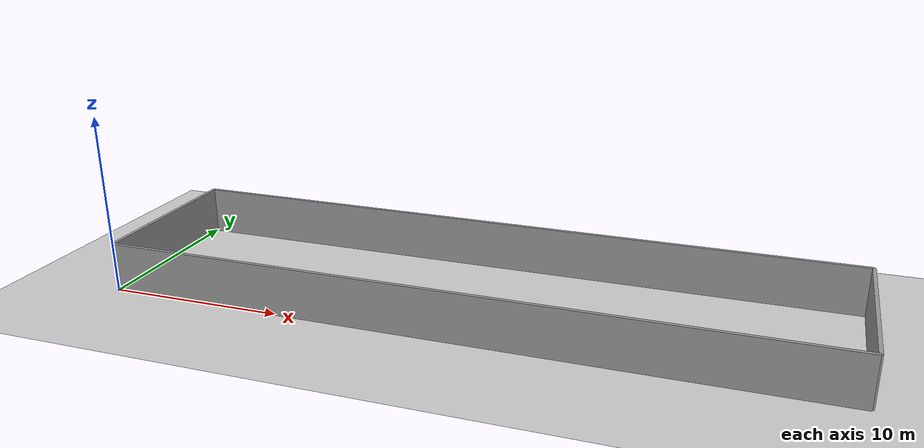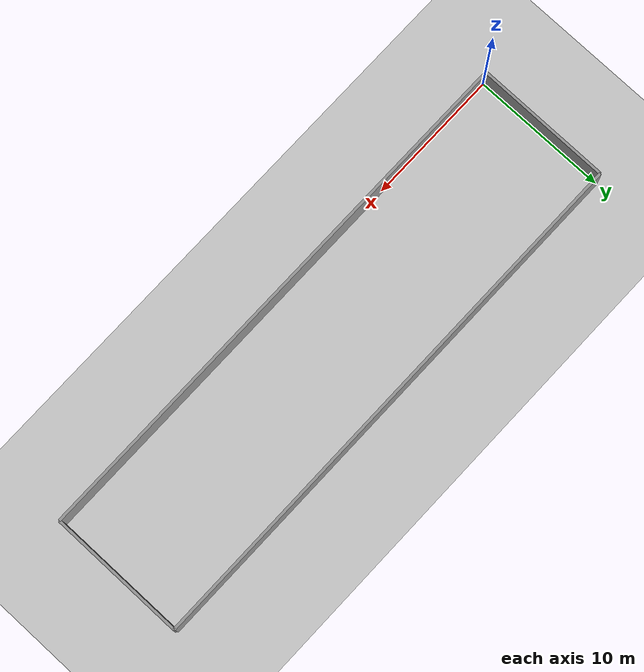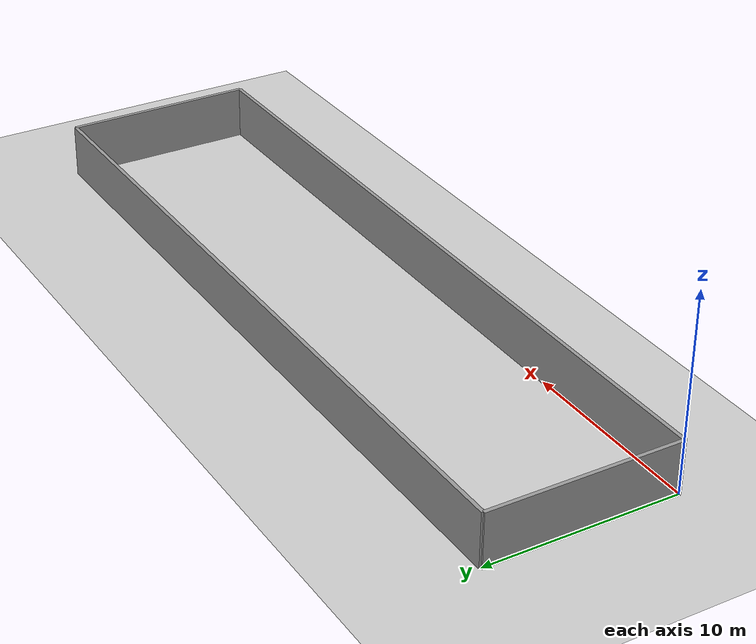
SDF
<?xml version="1.0" ?>
<!-- this file is auto generated using pedsim_gazebo_plugin pkg -->
<sdf version="1.5">
  <world name="default">
    <plugin name="gazebo_ros_state" filename="libgazebo_ros_state.so">
      <ros>
        <namespace>/gazebo_spawner</namespace>
      </ros>
      <update_rate>1.0</update_rate>
    </plugin>
    <!-- Ground Plane -->
    <include>
        <uri>model://ground_plane</uri>
    </include>
    <include>
        <uri>model://sun</uri>
    </include>

    <model name='grey_wall_1'>
      <static>1</static>
      <link name='link'>
        <pose frame=''>20.0 0.0  1.4 0 0 0.0</pose>

        <collision name='collision'>
          <geometry>
            <box>
              <size>40.0 0.2 2.8</size>
            </box>
          </geometry>
          <max_contacts>10</max_contacts>
          <surface>
            <contact>
                <ode/>
            </contact>
            <bounce/>
            <friction>
              <torsional>
                <ode/>
              </torsional>
              <ode/>
            </friction>
          </surface>
        </collision>

        <visual name='visual'>
          <cast_shadows>1</cast_shadows>
          <geometry>
            <box>
              <size>40.0 0.2 2.8</size>
            </box>
          </geometry>
          <material>
            <script>
              <uri>model://grey_wall/materials/scripts</uri>
              <uri>model://grey_wall/materials/textures</uri>
              <name>vrc/grey_wall</name>
            </script>
            <!-- Update material for better visual appearance -->
            <color rgba="0.8 0.8 0.8 1"/> <!-- Light grey color -->
          </material>
        </visual>
        <self_collide>0</self_collide>
        <enable_wind>0</enable_wind>
        <kinematic>0</kinematic>
      </link>
    </model>

    <model name='grey_wall_2'>
      <static>1</static>
      <link name='link'>
        <pose frame=''>0.0 5.0  1.4 0 0 1.57</pose>

        <collision name='collision'>
          <geometry>
            <box>
              <size>10.0 0.2 2.8</size>
            </box>
          </geometry>
          <max_contacts>10</max_contacts>
          <surface>
            <contact>
                <ode/>
            </contact>
            <bounce/>
            <friction>
              <torsional>
                <ode/>
              </torsional>
              <ode/>
            </friction>
          </surface>
        </collision>

        <visual name='visual'>
          <cast_shadows>1</cast_shadows>
          <geometry>
            <box>
              <size>10.0 0.2 2.8</size>
            </box>
          </geometry>
          <material>
            <script>
              <uri>model://grey_wall/materials/scripts</uri>
              <uri>model://grey_wall/materials/textures</uri>
              <name>vrc/grey_wall</name>
            </script>
            <!-- Update material for better visual appearance -->
            <color rgba="0.6 0.6 0.6 1"/> <!-- Slightly darker grey -->
          </material>
        </visual>
        <self_collide>0</self_collide>
        <enable_wind>0</enable_wind>
        <kinematic>0</kinematic>
      </link>
    </model>

    <model name='grey_wall_3'>
      <static>1</static>
      <link name='link'>
        <pose frame=''>20.0 10.0  1.4 0 0 0.0</pose>

        <collision name='collision'>
          <geometry>
            <box>
              <size>40.0 0.2 2.8</size>
            </box>
          </geometry>
          <max_contacts>10</max_contacts>
          <surface>
            <contact>
                <ode/>
            </contact>
            <bounce/>
            <friction>
              <torsional>
                <ode/>
              </torsional>
              <ode/>
            </friction>
          </surface>
        </collision>

        <visual name='visual'>
          <cast_shadows>1</cast_shadows>
          <geometry>
            <box>
              <size>40.0 0.2 2.8</size>
            </box>
          </geometry>
          <material>
            <script>
              <uri>model://grey_wall/materials/scripts</uri>
              <uri>model://grey_wall/materials/textures</uri>
              <name>vrc/grey_wall</name>
            </script>
            <!-- Update material for better visual appearance -->
            <color rgba="0.7 0.7 0.7 1"/> <!-- Medium grey color -->
          </material>
        </visual>
        <self_collide>0</self_collide>
        <enable_wind>0</enable_wind>
        <kinematic>0</kinematic>
      </link>
    </model>

    <model name='grey_wall_4'>
      <static>1</static>
      <link name='link'>
        <pose frame=''>40.0 5.0  1.4 0 0 1.57</pose>

        <collision name='collision'>
          <geometry>
            <box>
              <size>10.0 0.2 2.8</size>
            </box>
          </geometry>
          <max_contacts>10</max_contacts>
          <surface>
            <contact>
                <ode/>
            </contact>
            <bounce/>
            <friction>
              <torsional>
                <ode/>
              </torsional>
              <ode/>
            </friction>
          </surface>
        </collision>

        <visual name='visual'>
          <cast_shadows>1</cast_shadows>
          <geometry>
            <box>
              <size>10.0 0.2 2.8</size>
            </box>
          </geometry>
          <material>
            <script>
              <uri>model://grey_wall/materials/scripts</uri>
              <uri>model://grey_wall/materials/textures</uri>
              <name>vrc/grey_wall</name>
            </script>
            <!-- Update material for better visual appearance -->
            <color rgba="0.9 0.9 0.9 1"/> <!-- Lightest grey color -->
          </material>
        </visual>
        <self_collide>0</self_collide>
        <enable_wind>0</enable_wind>
        <kinematic>0</kinematic>
      </link>
    </model>

  </world>
</sdf>
